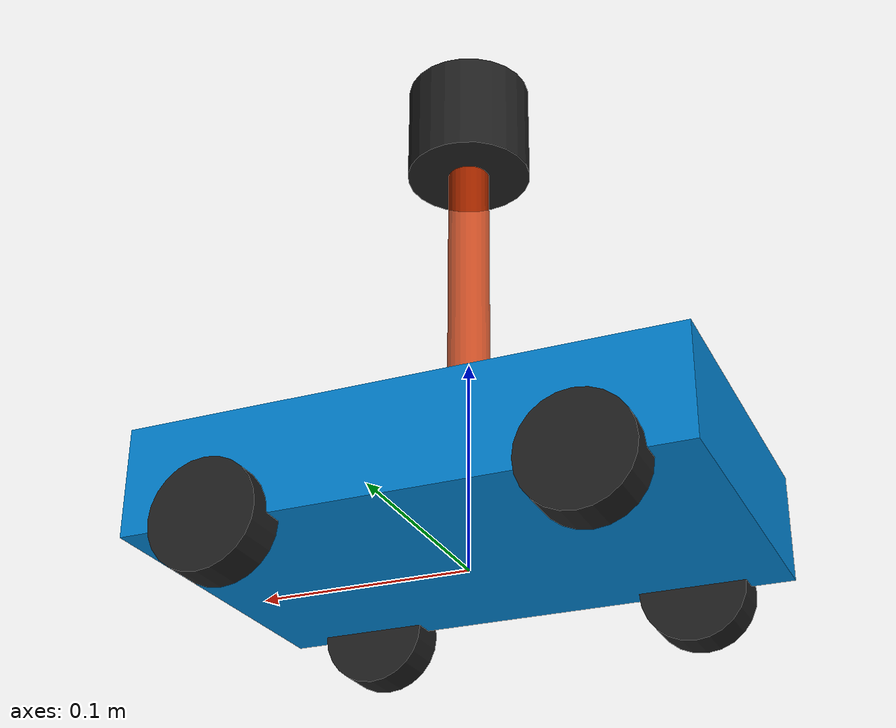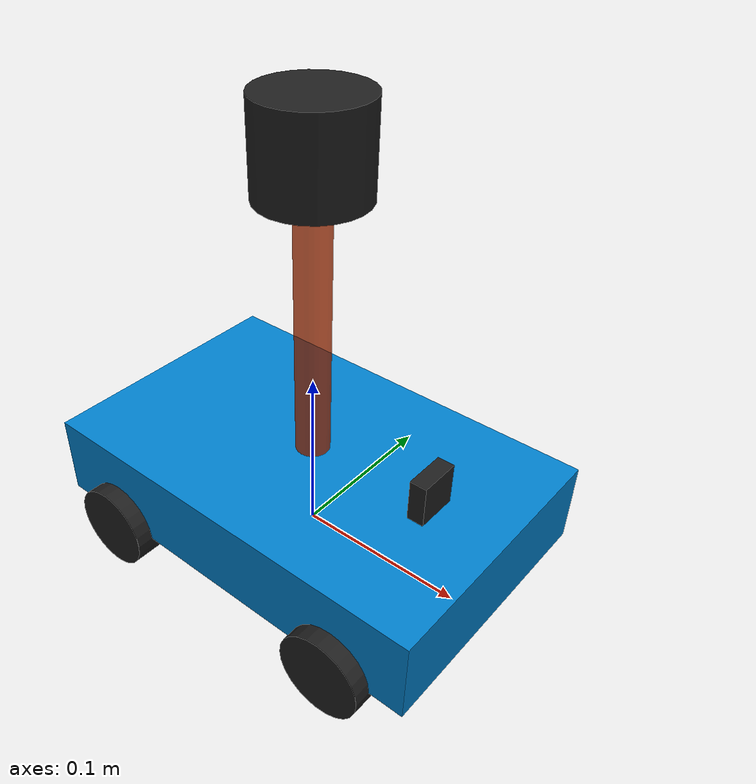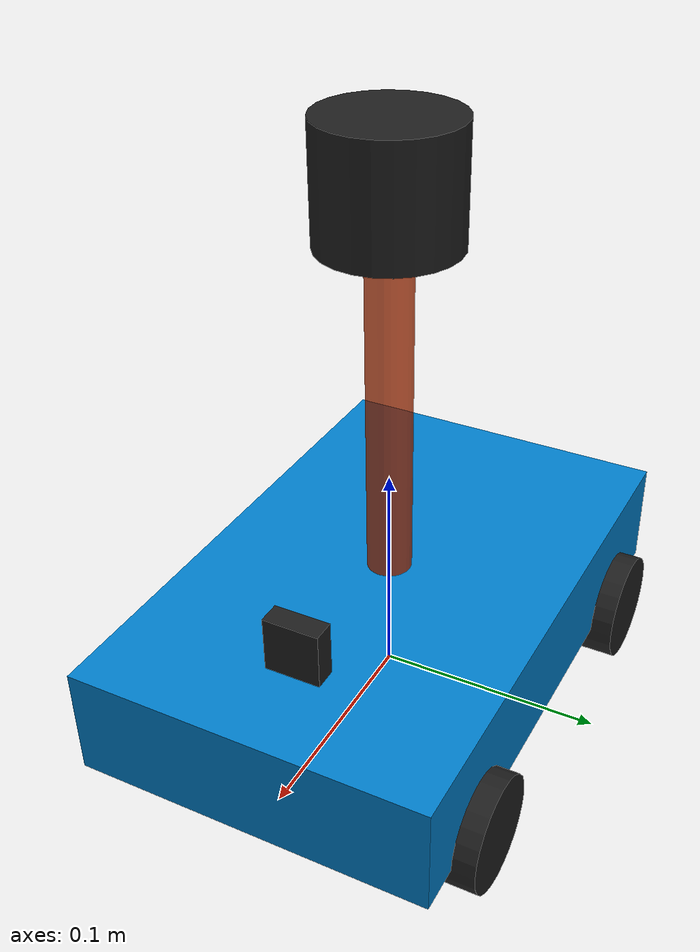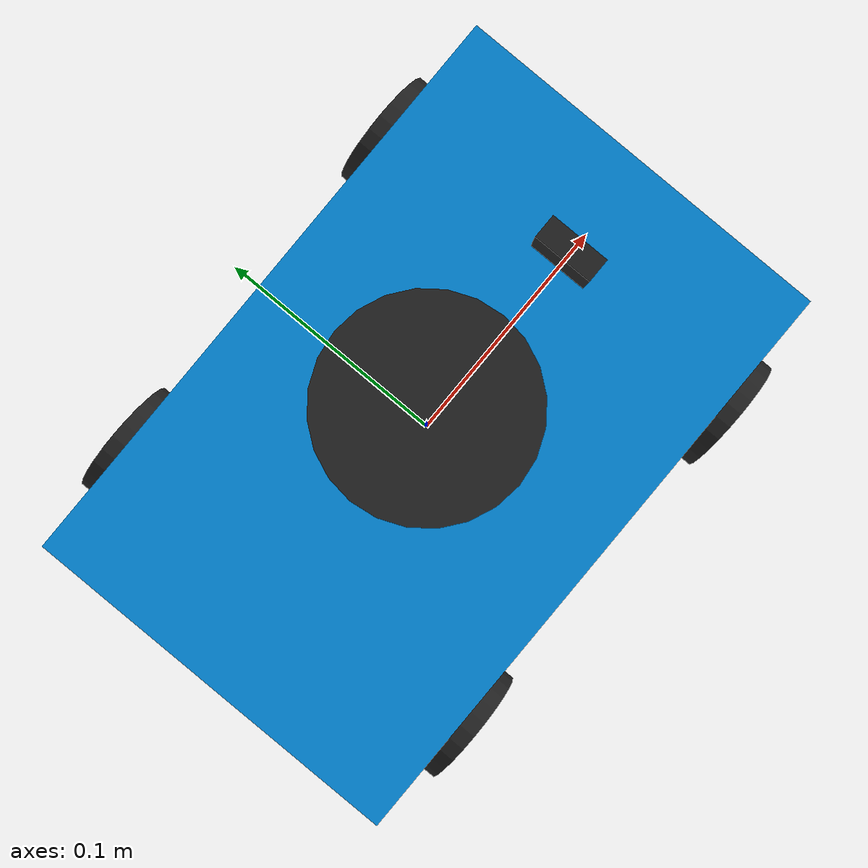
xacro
<?xml version="1.0"?>
<robot name="myrobot" xmlns:xacro="http://wiki.ros.org/xacro">
    <!--xacro:include filename="head.urdf.xacro" /-->
    <xacro:include filename="xacro_robot_base.urdf.xacro" />
    <xacro:include filename="camera.urdf.xacro" />
    <xacro:include filename="lidar.urdf.xacro" />
    <!--xacro:include filename="move.urdf.xacro" /-->
</robot>

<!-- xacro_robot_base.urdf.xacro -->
<robot name="robot_base" xmlns:xacro="http://www.ros.org/wiki/xacro">
    <xacro:property name="PI" value="3.1415926"/>
    <xacro:property name="base_link_width" value="0.16" />
    <xacro:property name="base_link_length" value="0.25" />
    <xacro:property name="base_link_height" value="0.05" />
    <xacro:property name="earth_space" value="0.025" />

    <link name="base_footprint">
      <visual>
        <geometry>
           <box size="0.001 0.001 0.001" />
        </geometry>
      </visual>
    </link>

    <link name="base_link">
        <visual>
            <geometry>
                <box size="${base_link_length} ${base_link_width} ${base_link_height}"/>
            </geometry>
            <origin rpy="0 0 0" xyz="0 0 0"/>
            <material name="blue">
                <color rgba="0 0.5 0.8 1"/>
            </material>
        </visual>
    </link>

     <joint name="base_link2base_footprint" type="fixed">
      <parent link="base_footprint" />
      <child link="base_link" />
      <origin xyz="0 0 ${earth_space + 0.005}" />
    </joint>

    <xacro:property name="wheel_radius" value="0.025" />
    <xacro:property name="wheel_length" value="0.02" />
    <xacro:property name="wheel_offset" value="0.08" />

    <xacro:macro name="add_front_wheels" params="name flag">
    <link name="${name}_wheel">
        <visual>
          <geometry>
            <cylinder radius="${wheel_radius}" length="${wheel_length}" />
          </geometry>
          <origin xyz="0.0 0.0 0.0" rpy="${PI/2} 0.0 0.0" />
          <material name="black" />
        </visual>
    </link>

    <joint name="${name}_wheel2base_link" type="continuous">
        <parent link="base_link" />
        <child link="${name}_wheel" />
        <origin xyz="${wheel_offset} ${flag * base_link_width/2} ${-(earth_space + base_link_height / 2 - wheel_radius) }" />
        <axis xyz="0 1 0" />
    </joint>
    </xacro:macro>
    <xacro:add_front_wheels name="left_front" flag="1" />
    <xacro:add_front_wheels name="right_front" flag="-1" />

    <xacro:macro name="add_back_wheels" params="name flag">
    <link name="${name}_wheel">
        <visual>
          <geometry>
            <cylinder radius="${wheel_radius}" length="${wheel_length}" />
          </geometry>
          <origin xyz="0.0 0.0 0.0" rpy="${PI/2} 0.0 0.0" />
          <material name="black" />
        </visual>
    </link>

    <joint name="${name}_wheel2base_link" type="continuous">
        <parent link="base_link" />
        <child link="${name}_wheel" />
        <origin xyz="${-wheel_offset} ${flag * base_link_width/2} ${-(earth_space + base_link_height / 2 - wheel_radius) }" />
        <axis xyz="0 1 0" />
    </joint>
    </xacro:macro>
    <xacro:add_back_wheels name="left_back" flag="1" />
    <xacro:add_back_wheels name="right_back" flag="-1" />

    <!--simplified_wheel_xacro-->

</robot>

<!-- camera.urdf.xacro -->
<robot name="camera" xmlns:xacro="http://wiki.ros.org/xacro">
    <xacro:property name="camera_length" value="0.01" />
    <xacro:property name="camera_width" value="0.025" />
    <xacro:property name="camera_height" value="0.025" />
    <xacro:property name="camera_x" value="0.08" />
    <xacro:property name="camera_y" value="0.0" />
    <xacro:property name="camera_z" value="${base_link_height / 2 + camera_height / 2}" />

    <link name="camera">
        <visual>
            <geometry>
                <box size="${camera_length} ${camera_width} ${camera_height}" />
            </geometry>
            <origin xyz="0.0 0.0 0.0" rpy="0.0 0.0 0.0" />
            <material name="black" />
        </visual>
    </link>

    <joint name="camera2base_link" type="fixed">
        <parent link="base_link" />
        <child link="camera" />
        <origin xyz="${camera_x} ${camera_y} ${camera_z}" />
    </joint>
</robot>

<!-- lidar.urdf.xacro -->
<robot name="lidar" xmlns:xacro="http://wiki.ros.org/xacro">
    <xacro:property name="support_length" value="0.15" />
    <xacro:property name="support_radius" value="0.01" />
    <xacro:property name="support_x" value="0.0" />
    <xacro:property name="support_y" value="0.0" />
    <xacro:property name="support_z" value="${base_link_height / 2 + support_length / 2}" />

    <link name="support">
        <visual>
            <geometry>
                <cylinder radius="${support_radius}" length="${support_length}" />
            </geometry>
            <origin xyz="0.0 0.0 0.0" rpy="0.0 0.0 0.0" />
            <material name="red">
                <color rgba="0.8 0.2 0.0 0.8" />
            </material>
        </visual>
    </link>

    <joint name="support2base_link" type="fixed">
        <parent link="base_link" />
        <child link="support" />
        <origin xyz="${support_x} ${support_y} ${support_z}" />
    </joint>

    <xacro:property name="laser_length" value="0.05" />
    <xacro:property name="laser_radius" value="0.03" />
    <xacro:property name="laser_x" value="0.0" />
    <xacro:property name="laser_y" value="0.0" />
    <xacro:property name="laser_z" value="${support_length / 2 + laser_length / 2}" />

    <link name="laser">
        <visual>
            <geometry>
                <cylinder radius="${laser_radius}" length="${laser_length}" />
            </geometry>
            <origin xyz="0.0 0.0 0.0" rpy="0.0 0.0 0.0" />
            <material name="black" />
        </visual>
    </link>

    <joint name="laser2support" type="fixed">
        <parent link="support" />
        <child link="laser" />
        <origin xyz="${laser_x} ${laser_y} ${laser_z}" />
    </joint>

</robot>
